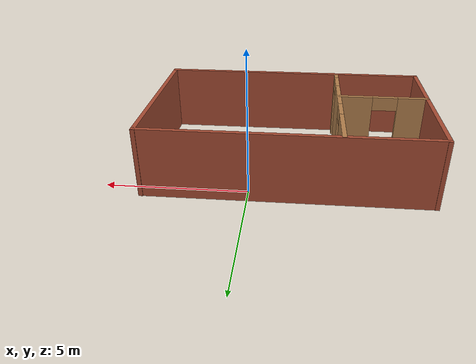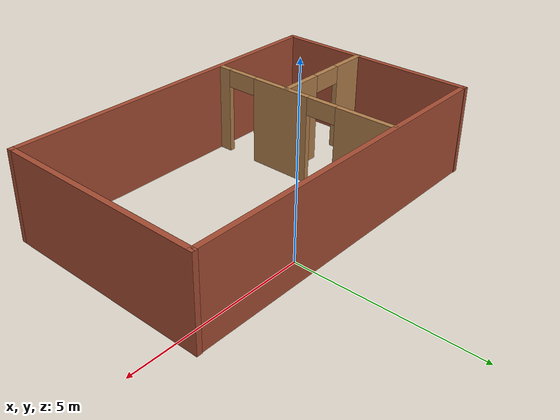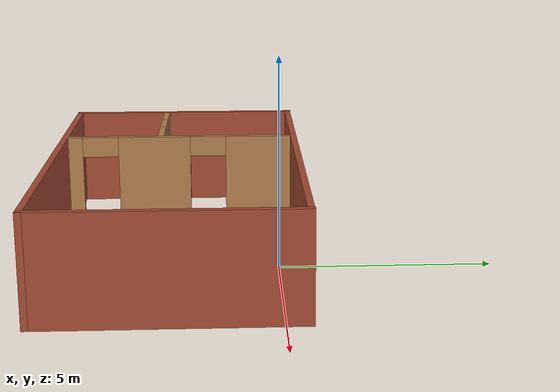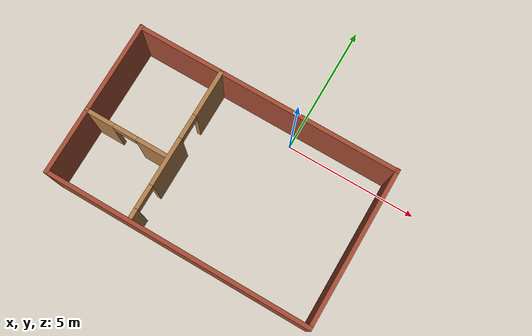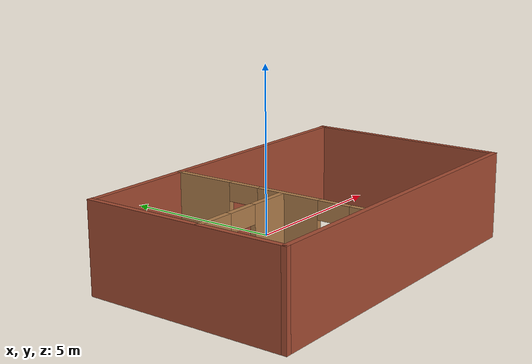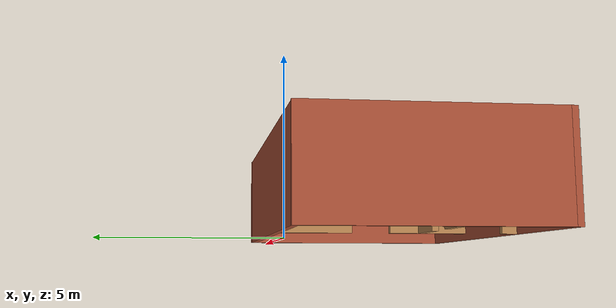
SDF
<?xml version='1.0'?>
<sdf version='1.7'>
  <model name='plane_1'>
    <pose>-1.311 -2.39292 0 0 -0 0</pose>
    <link name='Wall_0'>
      <collision name='Wall_0_Collision'>
        <geometry>
          <box>
            <size>5.95815 0.15 2.5</size>
          </box>
        </geometry>
        <pose>0 0 1.25 0 -0 0</pose>
      </collision>
      <visual name='Wall_0_Visual'>
        <pose>0 0 1.25 0 -0 0</pose>
        <geometry>
          <box>
            <size>5.95815 0.15 2.5</size>
          </box>
        </geometry>
        <material>
          <script>
            <uri>file://media/materials/scripts/gazebo.material</uri>
            <name>Gazebo/Bricks</name>
          </script>
          <ambient>0.996078 0.47451 0.0196078 1</ambient>
        </material>
        <meta>
          <layer>0</layer>
        </meta>
      </visual>
      <pose>-4.925 0 0 0 -0 1.5708</pose>
    </link>
    <link name='Wall_1'>
      <collision name='Wall_1_Collision'>
        <geometry>
          <box>
            <size>10 0.15 2.5</size>
          </box>
        </geometry>
        <pose>0 0 1.25 0 -0 0</pose>
      </collision>
      <visual name='Wall_1_Visual'>
        <pose>0 0 1.25 0 -0 0</pose>
        <geometry>
          <box>
            <size>10 0.15 2.5</size>
          </box>
        </geometry>
        <material>
          <script>
            <uri>file://media/materials/scripts/gazebo.material</uri>
            <name>Gazebo/Bricks</name>
          </script>
          <ambient>1 1 1 1</ambient>
        </material>
        <meta>
          <layer>0</layer>
        </meta>
      </visual>
      <pose>0 2.88887 0 0 -0 0</pose>
    </link>
    <link name='Wall_2'>
      <collision name='Wall_2_Collision'>
        <geometry>
          <box>
            <size>5.95815 0.15 2.5</size>
          </box>
        </geometry>
        <pose>0 0 1.25 0 -0 0</pose>
      </collision>
      <visual name='Wall_2_Visual'>
        <pose>0 0 1.25 0 -0 0</pose>
        <geometry>
          <box>
            <size>5.95815 0.15 2.5</size>
          </box>
        </geometry>
        <material>
          <script>
            <uri>file://media/materials/scripts/gazebo.material</uri>
            <name>Gazebo/Bricks</name>
          </script>
          <ambient>1 1 1 1</ambient>
        </material>
        <meta>
          <layer>0</layer>
        </meta>
      </visual>
      <pose>4.925 0 0 0 -0 -1.5708</pose>
    </link>
    <link name='Wall_3'>
      <collision name='Wall_3_Collision'>
        <geometry>
          <box>
            <size>10 0.15 2.5</size>
          </box>
        </geometry>
        <pose>0 0 1.25 0 -0 0</pose>
      </collision>
      <visual name='Wall_3_Visual'>
        <pose>0 0 1.25 0 -0 0</pose>
        <geometry>
          <box>
            <size>10 0.15 2.5</size>
          </box>
        </geometry>
        <material>
          <script>
            <uri>file://media/materials/scripts/gazebo.material</uri>
            <name>Gazebo/Bricks</name>
          </script>
          <ambient>1 1 1 1</ambient>
        </material>
        <meta>
          <layer>0</layer>
        </meta>
      </visual>
      <pose>0 -2.90408 0 0 -0 3.14159</pose>
    </link>
    <link name='Wall_5'>
      <pose>-1.754 0.041726 0 0 -0 1.5708</pose>
      <visual name='Wall_5_Visual_0'>
        <pose>-2.69071 0 1.25 0 -0 0</pose>
        <geometry>
          <box>
            <size>0.368588 0.15 2.5</size>
          </box>
        </geometry>
        <material>
          <script>
            <uri>file://media/materials/scripts/gazebo.material</uri>
            <name>Gazebo/Wood</name>
          </script>
          <ambient>1 1 1 1</ambient>
        </material>
        <meta>
          <layer>0</layer>
        </meta>
      </visual>
      <collision name='Wall_5_Collision_0'>
        <geometry>
          <box>
            <size>0.368588 0.15 2.5</size>
          </box>
        </geometry>
        <pose>-2.69071 0 1.25 0 -0 0</pose>
      </collision>
      <visual name='Wall_5_Visual_1'>
        <pose>-0.695381 0 1.25 0 -0 0</pose>
        <geometry>
          <box>
            <size>1.82206 0.15 2.5</size>
          </box>
        </geometry>
        <material>
          <script>
            <uri>file://media/materials/scripts/gazebo.material</uri>
            <name>Gazebo/Wood</name>
          </script>
          <ambient>1 1 1 1</ambient>
        </material>
        <meta>
          <layer>0</layer>
        </meta>
      </visual>
      <collision name='Wall_5_Collision_1'>
        <geometry>
          <box>
            <size>1.82206 0.15 2.5</size>
          </box>
        </geometry>
        <pose>-0.695381 0 1.25 0 -0 0</pose>
      </collision>
      <visual name='Wall_5_Visual_2'>
        <pose>1.99533 0 1.25 0 -0 0</pose>
        <geometry>
          <box>
            <size>1.75935 0.15 2.5</size>
          </box>
        </geometry>
        <material>
          <script>
            <uri>file://media/materials/scripts/gazebo.material</uri>
            <name>Gazebo/Wood</name>
          </script>
          <ambient>1 1 1 1</ambient>
        </material>
        <meta>
          <layer>0</layer>
        </meta>
      </visual>
      <collision name='Wall_5_Collision_2'>
        <geometry>
          <box>
            <size>1.75935 0.15 2.5</size>
          </box>
        </geometry>
        <pose>1.99533 0 1.25 0 -0 0</pose>
      </collision>
      <visual name='Wall_5_Visual_3'>
        <pose>-2.05641 0 2.25 0 -0 0</pose>
        <geometry>
          <box>
            <size>0.9 0.15 0.5</size>
          </box>
        </geometry>
        <material>
          <script>
            <uri>file://media/materials/scripts/gazebo.material</uri>
            <name>Gazebo/Wood</name>
          </script>
          <ambient>1 1 1 1</ambient>
        </material>
        <meta>
          <layer>0</layer>
        </meta>
      </visual>
      <collision name='Wall_5_Collision_3'>
        <geometry>
          <box>
            <size>0.9 0.15 0.5</size>
          </box>
        </geometry>
        <pose>-2.05641 0 2.25 0 -0 0</pose>
      </collision>
      <visual name='Wall_5_Visual_4'>
        <pose>0.665649 0 2.25 0 -0 0</pose>
        <geometry>
          <box>
            <size>0.9 0.15 0.5</size>
          </box>
        </geometry>
        <material>
          <script>
            <uri>file://media/materials/scripts/gazebo.material</uri>
            <name>Gazebo/Wood</name>
          </script>
          <ambient>1 1 1 1</ambient>
        </material>
        <meta>
          <layer>0</layer>
        </meta>
      </visual>
      <collision name='Wall_5_Collision_4'>
        <geometry>
          <box>
            <size>0.9 0.15 0.5</size>
          </box>
        </geometry>
        <pose>0.665649 0 2.25 0 -0 0</pose>
      </collision>
    </link>
    <link name='Wall_7'>
      <pose>-3.3605 -0.489076 0 0 -0 3.14159</pose>
      <visual name='Wall_7_Visual_0'>
        <pose>-1.00762 0 1.25 0 -0 0</pose>
        <geometry>
          <box>
            <size>1.23476 0.15 2.5</size>
          </box>
        </geometry>
        <material>
          <script>
            <uri>file://media/materials/scripts/gazebo.material</uri>
            <name>Gazebo/Wood</name>
          </script>
          <ambient>1 1 1 1</ambient>
        </material>
        <meta>
          <layer>0</layer>
        </meta>
      </visual>
      <collision name='Wall_7_Collision_0'>
        <geometry>
          <box>
            <size>1.23476 0.15 2.5</size>
          </box>
        </geometry>
        <pose>-1.00762 0 1.25 0 -0 0</pose>
      </collision>
      <visual name='Wall_7_Visual_1'>
        <pose>1.06738 0 1.25 0 -0 0</pose>
        <geometry>
          <box>
            <size>1.11524 0.15 2.5</size>
          </box>
        </geometry>
        <material>
          <script>
            <uri>file://media/materials/scripts/gazebo.material</uri>
            <name>Gazebo/Wood</name>
          </script>
          <ambient>1 1 1 1</ambient>
        </material>
        <meta>
          <layer>0</layer>
        </meta>
      </visual>
      <collision name='Wall_7_Collision_1'>
        <geometry>
          <box>
            <size>1.11524 0.15 2.5</size>
          </box>
        </geometry>
        <pose>1.06738 0 1.25 0 -0 0</pose>
      </collision>
      <visual name='Wall_7_Visual_2'>
        <pose>0.059762 0 2.25 0 -0 0</pose>
        <geometry>
          <box>
            <size>0.9 0.15 0.5</size>
          </box>
        </geometry>
        <material>
          <script>
            <uri>file://media/materials/scripts/gazebo.material</uri>
            <name>Gazebo/Wood</name>
          </script>
          <ambient>1 1 1 1</ambient>
        </material>
        <meta>
          <layer>0</layer>
        </meta>
      </visual>
      <collision name='Wall_7_Collision_2'>
        <geometry>
          <box>
            <size>0.9 0.15 0.5</size>
          </box>
        </geometry>
        <pose>0.059762 0 2.25 0 -0 0</pose>
      </collision>
    </link>
    <static>1</static>
  </model>
</sdf>
